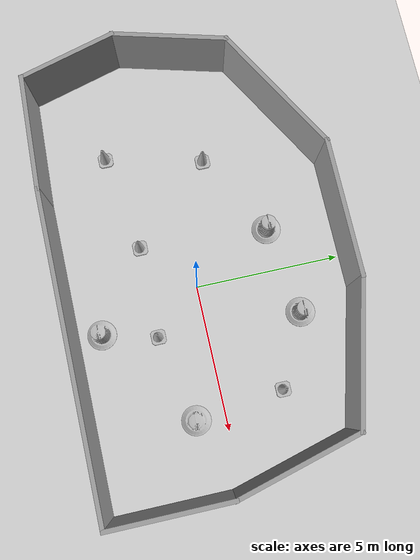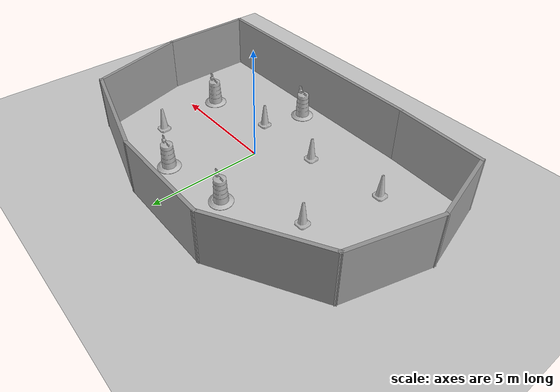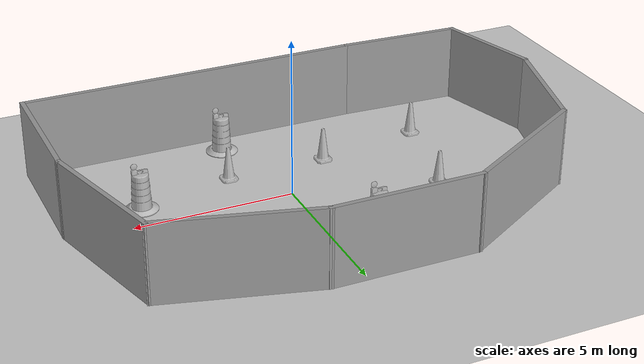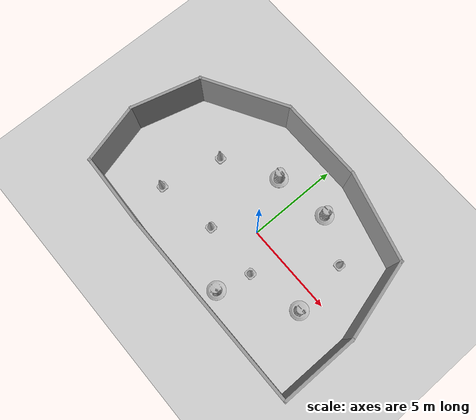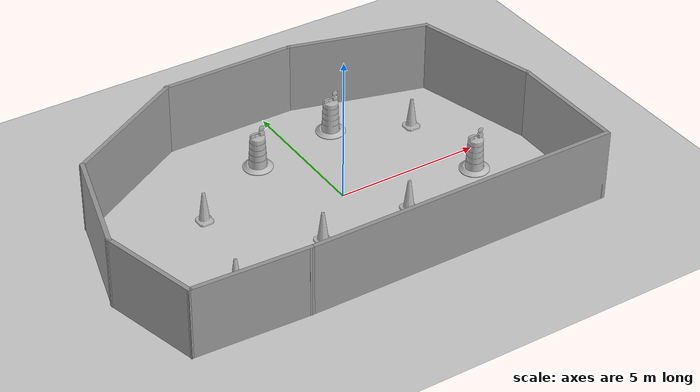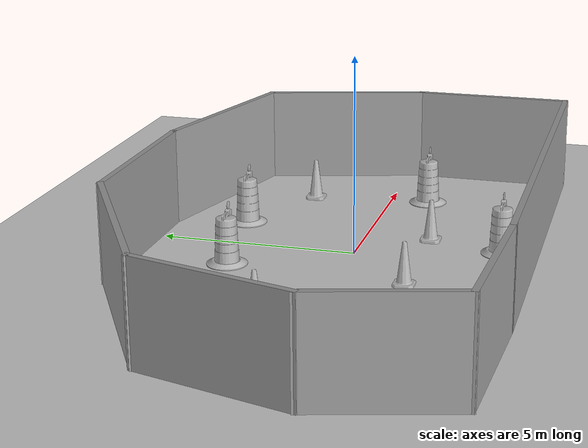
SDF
<sdf version="1.7">
 <world name="default">
  <light name="sun" type="directional">
   <pose>0 0 10 0 -0 0</pose>
   <diffuse>0.8 0.8 0.8 1</diffuse>
   <specular>0.2 0.2 0.2 1</specular>
   <attenuation>
    <range>1000</range>
    <constant>0.9</constant>
    <linear>0.01</linear>
    <quadratic>0.001</quadratic>
   </attenuation>
   <direction>-0.5 0.1 -0.9</direction>
   <spot><inner_angle>0</inner_angle><outer_angle>0</outer_angle><falloff>0</falloff></spot>
  </light>
  <model name="ground_plane">
   <static>1</static>
   <link name="link">
    <collision name="collision">
     <geometry><plane><normal>0 0 1</normal><size>100 100</size></plane></geometry>
     <surface>
      <contact><collide_bitmask>65535</collide_bitmask></contact>
      <friction><ode><mu>100</mu><mu2>50</mu2></ode></friction>
     </surface>
    </collision>
    <visual name="visual">
     <cast_shadows>0</cast_shadows>
     <geometry><plane><normal>0 0 1</normal><size>100 100</size></plane></geometry>
     <material>
      <script><uri>file://media/materials/scripts/gazebo.material</uri><name>Gazebo/Grey</name></script>
     </material>
    </visual>
   </link>
  </model>
  <gravity>0 0 -9.8</gravity>
  <magnetic_field>6e-06 2.3e-05 -4.2e-05</magnetic_field>
  <atmosphere type="adiabatic"/>
  <physics type="ode">
   <max_step_size>0.001</max_step_size>
   <real_time_factor>1</real_time_factor>
   <real_time_update_rate>1000</real_time_update_rate>
  </physics>
  <scene><ambient>0.4 0.4 0.4 1</ambient><background>0.7 0.7 0.7 1</background><shadows>1</shadows></scene>
  <audio><device>default</device></audio>
  <spherical_coordinates>
   <surface_model>EARTH_WGS84</surface_model>
   <latitude_deg>0</latitude_deg>
   <longitude_deg>0</longitude_deg>
   <elevation>0</elevation>
   <heading_deg>0</heading_deg>
  </spherical_coordinates>
  <model name="Construction Barrel">
   <link name="link">
    <inertial>
     <pose>0 0 0.4 0 -0 0</pose>
     <mass>500</mass>
     <inertia><ixx>51.2096</ixx><iyy>51.2096</iyy><izz>25</izz><ixy>0</ixy><ixz>0</ixz><iyz>0</iyz></inertia>
    </inertial>
    <collision name="collision">
     <geometry><mesh><uri>model://construction_barrel/meshes/construction_barrel.dae</uri></mesh></geometry>
    </collision>
    <visual name="visual">
     <geometry><mesh><uri>model://construction_barrel/meshes/construction_barrel.dae</uri></mesh></geometry>
    </visual>
   </link>
   <pose>1.61278 3.30422 -2e-06 -5e-06 -4e-06 -2.7e-05</pose>
  </model>
  <model name="Construction Barrel_0">
   <link name="link">
    <inertial>
     <pose>0 0 0.4 0 -0 0</pose>
     <mass>500</mass>
     <inertia><ixx>51.2096</ixx><iyy>51.2096</iyy><izz>25</izz><ixy>0</ixy><ixz>0</ixz><iyz>0</iyz></inertia>
    </inertial>
    <collision name="collision">
     <geometry><mesh><uri>model://construction_barrel/meshes/construction_barrel.dae</uri></mesh></geometry>
    </collision>
    <visual name="visual">
     <geometry><mesh><uri>model://construction_barrel/meshes/construction_barrel.dae</uri></mesh></geometry>
    </visual>
   </link>
   <pose>4.42607 -1.00391 -1e-06 4e-06 -2e-06 -2.4e-05</pose>
  </model>
  <model name="Construction Barrel_1">
   <link name="link">
    <inertial>
     <pose>0 0 0.4 0 -0 0</pose>
     <mass>500</mass>
     <inertia><ixx>51.2096</ixx><iyy>51.2096</iyy><izz>25</izz><ixy>0</ixy><ixz>0</ixz><iyz>0</iyz></inertia>
    </inertial>
    <collision name="collision">
     <geometry><mesh><uri>model://construction_barrel/meshes/construction_barrel.dae</uri></mesh></geometry>
    </collision>
    <visual name="visual">
     <geometry><mesh><uri>model://construction_barrel/meshes/construction_barrel.dae</uri></mesh></geometry>
    </visual>
   </link>
   <pose>0.915268 -3.54237 -0 0 0 -2e-05</pose>
  </model>
  <model name="Construction Barrel_2">
   <link name="link">
    <inertial>
     <pose>0 0 0.4 0 -0 0</pose>
     <mass>500</mass>
     <inertia><ixx>51.2096</ixx><iyy>51.2096</iyy><izz>25</izz><ixy>0</ixy><ixz>0</ixz><iyz>0</iyz></inertia>
    </inertial>
    <collision name="collision">
     <geometry><mesh><uri>model://construction_barrel/meshes/construction_barrel.dae</uri></mesh></geometry>
    </collision>
    <visual name="visual">
     <geometry><mesh><uri>model://construction_barrel/meshes/construction_barrel.dae</uri></mesh></geometry>
    </visual>
   </link>
   <pose>-1.4807 2.82762 2e-06 5e-06 3e-06 -1.9e-05</pose>
  </model>
  <model name="Construction Cone">
   <link name="link">
    <collision name="collision">
     <geometry>
      <mesh><scale>10 10 10</scale><uri>model://construction_cone/meshes/construction_cone.dae</uri></mesh>
     </geometry>
    </collision>
    <visual name="visual">
     <geometry>
      <mesh><scale>10 10 10</scale><uri>model://construction_cone/meshes/construction_cone.dae</uri></mesh>
     </geometry>
    </visual>
    <inertial>
     <inertia><ixx>1</ixx><ixy>0</ixy><ixz>0</ixz><iyy>1</iyy><iyz>0</iyz><izz>1</izz></inertia>
     <mass>1</mass>
    </inertial>
   </link>
   <pose>4.05216 2.09682 -0 0 -1e-06 0</pose>
  </model>
  <model name="Construction Cone_0">
   <link name="link">
    <collision name="collision">
     <geometry>
      <mesh><scale>10 10 10</scale><uri>model://construction_cone/meshes/construction_cone.dae</uri></mesh>
     </geometry>
    </collision>
    <visual name="visual">
     <geometry>
      <mesh><scale>10 10 10</scale><uri>model://construction_cone/meshes/construction_cone.dae</uri></mesh>
     </geometry>
    </visual>
    <inertial>
     <inertia><ixx>1</ixx><ixy>0</ixy><ixz>0</ixz><iyy>1</iyy><iyz>0</iyz><izz>1</izz></inertia>
     <mass>1</mass>
    </inertial>
   </link>
   <pose>1.40441 -1.66629 -1e-05 0 -0 0</pose>
  </model>
  <model name="Construction Cone_1">
   <link name="link">
    <collision name="collision">
     <geometry>
      <mesh><scale>10 10 10</scale><uri>model://construction_cone/meshes/construction_cone.dae</uri></mesh>
     </geometry>
    </collision>
    <visual name="visual">
     <geometry>
      <mesh><scale>10 10 10</scale><uri>model://construction_cone/meshes/construction_cone.dae</uri></mesh>
     </geometry>
    </visual>
    <inertial>
     <inertia><ixx>1</ixx><ixy>0</ixy><ixz>0</ixz><iyy>1</iyy><iyz>0</iyz><izz>1</izz></inertia>
     <mass>1</mass>
    </inertial>
   </link>
   <pose>-1.7828 -1.64649 -1e-06 1e-06 -2e-06 -0</pose>
  </model>
  <model name="walls_and_obs">
   <pose>-0.86364 0.380582 0 0 -0 0</pose>
   <link name="Wall_0">
    <collision name="Wall_0_Collision">
     <geometry><box><size>11 0.15 2.5</size></box></geometry>
     <pose>0 0 1.25 0 -0 0</pose>
    </collision>
    <visual name="Wall_0_Visual">
     <pose>0 0 1.25 0 -0 0</pose>
     <geometry><box><size>11 0.15 2.5</size></box></geometry>
     <material>
      <script><uri>file://media/materials/scripts/gazebo.material</uri><name>Gazebo/Grey</name></script>
      <ambient>1 1 1 1</ambient>
     </material>
     <meta><layer>0</layer></meta>
    </visual>
    <pose>2.37864 -4.79058 0 0 -0 0</pose>
   </link>
   <link name="Wall_1">
    <collision name="Wall_1_Collision">
     <geometry><box><size>4.25 0.15 2.5</size></box></geometry>
     <pose>0 0 1.25 0 -0 0</pose>
    </collision>
    <visual name="Wall_1_Visual">
     <pose>0 0 1.25 0 -0 0</pose>
     <geometry><box><size>4.25 0.15 2.5</size></box></geometry>
     <material>
      <script><uri>file://media/materials/scripts/gazebo.material</uri><name>Gazebo/Grey</name></script>
      <ambient>1 1 1 1</ambient>
     </material>
     <meta><layer>0</layer></meta>
    </visual>
    <pose>7.80364 -2.74058 0 0 -0 1.5708</pose>
   </link>
   <link name="Wall_2">
    <collision name="Wall_2_Collision">
     <geometry><box><size>4.5 0.15 2.5</size></box></geometry>
     <pose>0 0 1.25 0 -0 0</pose>
    </collision>
    <visual name="Wall_2_Visual">
     <pose>0 0 1.25 0 -0 0</pose>
     <geometry><box><size>4.5 0.15 2.5</size></box></geometry>
     <material>
      <script><uri>file://media/materials/scripts/gazebo.material</uri><name>Gazebo/Grey</name></script>
      <ambient>1 1 1 1</ambient>
     </material>
     <meta><layer>0</layer></meta>
    </visual>
    <pose>7.24071 1.41031 0 0 -0 1.8326</pose>
   </link>
   <link name="Wall_3">
    <collision name="Wall_3_Collision">
     <geometry><box><size>5 0.15 2.5</size></box></geometry>
     <pose>0 0 1.25 0 -0 0</pose>
    </collision>
    <visual name="Wall_3_Visual">
     <pose>0 0 1.25 0 -0 0</pose>
     <geometry><box><size>5 0.15 2.5</size></box></geometry>
     <material>
      <script><uri>file://media/materials/scripts/gazebo.material</uri><name>Gazebo/Grey</name></script>
      <ambient>1 1 1 1</ambient>
     </material>
     <meta><layer>0</layer></meta>
    </visual>
    <pose>4.33541 4.13883 0 0 -0 2.87979</pose>
   </link>
   <link name="Wall_4">
    <collision name="Wall_4_Collision">
     <geometry><box><size>4.75 0.15 2.5</size></box></geometry>
     <pose>0 0 1.25 0 -0 0</pose>
    </collision>
    <visual name="Wall_4_Visual">
     <pose>0 0 1.25 0 -0 0</pose>
     <geometry><box><size>4.75 0.15 2.5</size></box></geometry>
     <material>
      <script><uri>file://media/materials/scripts/gazebo.material</uri><name>Gazebo/Grey</name></script>
      <ambient>1 1 1 1</ambient>
     </material>
     <meta><layer>0</layer></meta>
    </visual>
    <pose>-0.306963 4.76647 0 0 -0 3.14159</pose>
   </link>
   <link name="Wall_5">
    <collision name="Wall_5_Collision">
     <geometry><box><size>5 0.15 2.5</size></box></geometry>
     <pose>0 0 1.25 0 -0 0</pose>
    </collision>
    <visual name="Wall_5_Visual">
     <pose>0 0 1.25 0 -0 0</pose>
     <geometry><box><size>5 0.15 2.5</size></box></geometry>
     <material>
      <script><uri>file://media/materials/scripts/gazebo.material</uri><name>Gazebo/Grey</name></script>
      <ambient>1 1 1 1</ambient>
     </material>
     <meta><layer>0</layer></meta>
    </visual>
    <pose>-4.70707 3.55397 0 0 -0 -2.61799</pose>
   </link>
   <link name="Wall_6">
    <collision name="Wall_6_Collision">
     <geometry><box><size>4 0.15 2.5</size></box></geometry>
     <pose>0 0 1.25 0 -0 0</pose>
    </collision>
    <visual name="Wall_6_Visual">
     <pose>0 0 1.25 0 -0 0</pose>
     <geometry><box><size>4 0.15 2.5</size></box></geometry>
     <material>
      <script><uri>file://media/materials/scripts/gazebo.material</uri><name>Gazebo/Grey</name></script>
      <ambient>1 1 1 1</ambient>
     </material>
     <meta><layer>0</layer></meta>
    </visual>
    <pose>-7.30541 0.482061 0 0 -0 -1.8326</pose>
   </link>
   <link name="Wall_7">
    <collision name="Wall_7_Collision">
     <geometry><box><size>3.5 0.15 2.5</size></box></geometry>
     <pose>0 0 1.25 0 -0 0</pose>
    </collision>
    <visual name="Wall_7_Visual">
     <pose>0 0 1.25 0 -0 0</pose>
     <geometry><box><size>3.5 0.15 2.5</size></box></geometry>
     <material>
      <script><uri>file://media/materials/scripts/gazebo.material</uri><name>Gazebo/Grey</name></script>
      <ambient>1 1 1 1</ambient>
     </material>
     <meta><layer>0</layer></meta>
    </visual>
    <pose>-7.37012 -2.99527 0 0 -0 -1.309</pose>
   </link>
   <link name="Wall_8">
    <collision name="Wall_8_Collision">
     <geometry><box><size>4.04428 0.15 2.5</size></box></geometry>
     <pose>0 0 1.25 0 -0 0</pose>
    </collision>
    <visual name="Wall_8_Visual">
     <pose>0 0 1.25 0 -0 0</pose>
     <geometry><box><size>4.04428 0.15 2.5</size></box></geometry>
     <material>
      <script><uri>file://media/materials/scripts/gazebo.material</uri><name>Gazebo/Grey</name></script>
      <ambient>1 1 1 1</ambient>
     </material>
     <meta><layer>0</layer></meta>
    </visual>
    <pose>-4.99148 -4.70189 0 0 -0 -0.045566</pose>
   </link>
   <static>1</static>
  </model>
  <model name="Construction Cone_2">
   <link name="link">
    <collision name="collision">
     <geometry>
      <mesh><scale>10 10 10</scale><uri>model://construction_cone/meshes/construction_cone.dae</uri></mesh>
     </geometry>
    </collision>
    <visual name="visual">
     <geometry>
      <mesh><scale>10 10 10</scale><uri>model://construction_cone/meshes/construction_cone.dae</uri></mesh>
     </geometry>
    </visual>
    <inertial>
     <inertia><ixx>1</ixx><ixy>0</ixy><ixz>0</ixz><iyy>1</iyy><iyz>0</iyz><izz>1</izz></inertia>
     <mass>1</mass>
    </inertial>
   </link>
   <pose>-4.38821 1.17833 0 -0 -0 -0</pose>
  </model>
  <model name="Construction Cone_3">
   <link name="link">
    <collision name="collision">
     <geometry>
      <mesh><scale>10 10 10</scale><uri>model://construction_cone/meshes/construction_cone.dae</uri></mesh>
     </geometry>
    </collision>
    <visual name="visual">
     <geometry>
      <mesh><scale>10 10 10</scale><uri>model://construction_cone/meshes/construction_cone.dae</uri></mesh>
     </geometry>
    </visual>
    <inertial>
     <inertia><ixx>1</ixx><ixy>0</ixy><ixz>0</ixz><iyy>1</iyy><iyz>0</iyz><izz>1</izz></inertia>
     <mass>1</mass>
    </inertial>
   </link>
   <pose>-5.18714 -2.19455 -0 0 -1e-06 0</pose>
  </model>
 </world>
</sdf>
